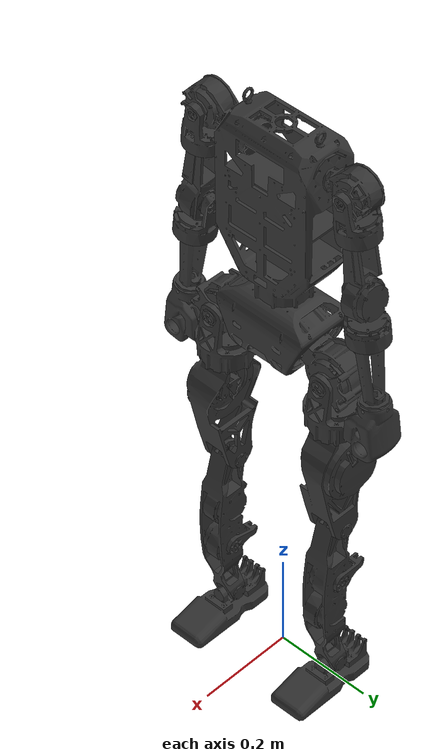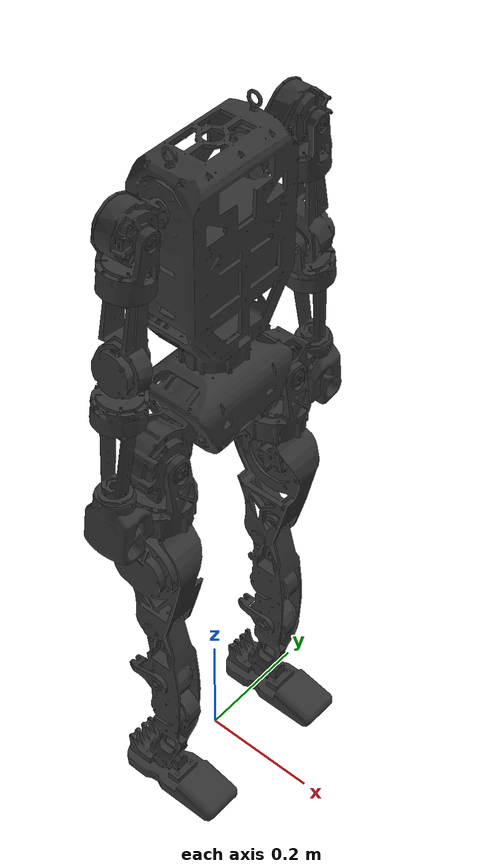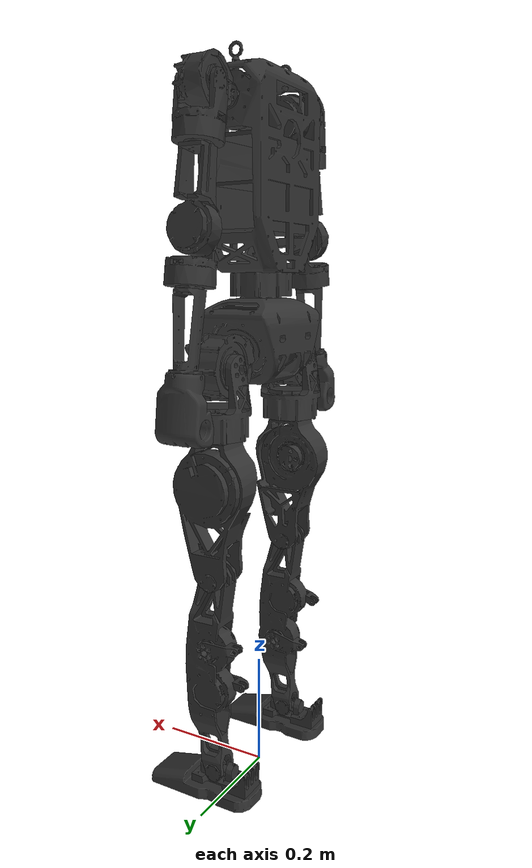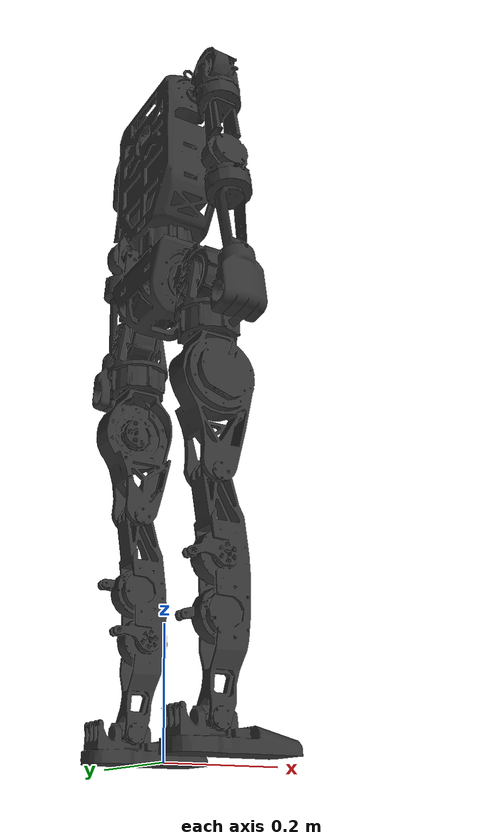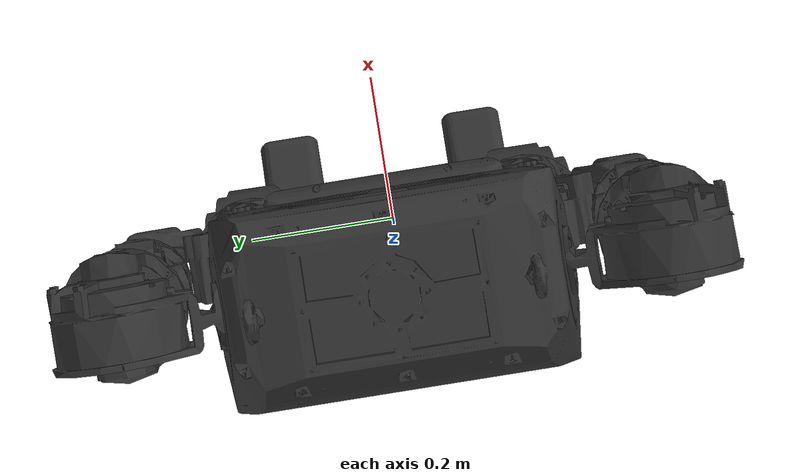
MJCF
<mujoco model="motion1_23dof_rev_1_0">
  <compiler angle="radian" meshdir="assets" autolimits="true"/>

  <option timestep='0.002' iterations="2" ls_iterations="5">
    <flag eulerdamp="disable" />
  </option>

  <default>
    <default class="motion1">
      <default class="visual">
        <geom group="2" type="mesh" density="0" material="silver" contype="0" conaffinity="0"/>
      </default>
      <default class="collision">
        <geom group="3" rgba=".2 .6 .2 .3" type="capsule" contype="1" conaffinity="1"/>
        <default class="foot_sphere">
          <geom type="sphere"/>
        </default>
      </default>
      <site group="5" rgba="1 0 0 1"/>
    </default>
  </default>

  <asset>
    <material name="silver" rgba="0.7 0.7 0.7 1"/>
    <material name="black" rgba="0.2 0.2 0.2 1"/>

    <mesh name="pelvis_link" file="pelvis_link.STL" />

    <mesh name="left_hip_pitch_link" file="left_hip_pitch_link.STL" />
    <mesh name="left_hip_roll_link" file="left_hip_roll_link.STL" />
    <mesh name="left_hip_yaw_link" file="left_hip_yaw_link.STL" />
    <mesh name="left_knee_link" file="left_knee_link.STL" />
    <mesh name="left_ankle_pitch_link" file="left_ankle_pitch_link.STL" />
    <mesh name="left_ankle_roll_link" file="left_ankle_roll_link.STL" />

    <mesh name="right_hip_pitch_link" file="right_hip_pitch_link.STL" />
    <mesh name="right_hip_roll_link" file="right_hip_roll_link.STL" />
    <mesh name="right_hip_yaw_link" file="right_hip_yaw_link.STL" />
    <mesh name="right_knee_link" file="right_knee_link.STL" />
    <mesh name="right_ankle_pitch_link" file="right_ankle_pitch_link.STL" />
    <mesh name="right_ankle_roll_link" file="right_ankle_roll_link.STL" />

    <mesh name="torso_link" file="torso_link.STL" />
    <mesh name="left_shoulder_pitch_link" file="left_shoulder_pitch_link.STL" />
    <mesh name="left_shoulder_roll_link" file="left_shoulder_roll_link.STL" />
    <mesh name="left_shoulder_yaw_link" file="left_shoulder_yaw_link.STL" />
    <mesh name="left_elbow_link" file="left_elbow_link.STL" />
    <mesh name="left_wrist_link" file="left_wrist_link.STL" />
    <mesh name="left_hand_link" file="left_hand_link.STL" />
    <mesh name="left_fist_link" file="left_fist_link.STL" />

    <mesh name="right_shoulder_pitch_link" file="right_shoulder_pitch_link.STL" />
    <mesh name="right_shoulder_roll_link" file="right_shoulder_roll_link.STL" />
    <mesh name="right_shoulder_yaw_link" file="right_shoulder_yaw_link.STL" />
    <mesh name="right_elbow_link" file="right_elbow_link.STL" />
    <mesh name="right_wrist_link" file="right_wrist_link.STL" />
    <mesh name="right_hand_link" file="right_hand_link.STL" />
    <mesh name="right_fist_link" file="right_fist_link.STL" />
  </asset>

  <worldbody>
    <body name="pelvis_link" pos="0 0 0.86">
      <light pos="0 0 2" mode="trackcom"/>
      <camera name="tracking" pos="1.734 -1.135 .35" xyaxes="0.552 0.834 -0.000 -0.170 0.112 0.979" mode="trackcom"/>

      <inertial pos="4.53344e-06 3.06828e-05 -0.0611805" quat="0.498187 0.4977 -0.50201 0.502086" mass="3.08581" diaginertia="0.0131825 0.0125599 0.00780354" />
      <freejoint name="floating_base_joint"/>
      <geom class="visual" material="black" mesh="pelvis_link" />
      <geom name="pelvis_collision" material="silver" class="collision" type="sphere" size="0.07" pos="0 0 -0.08"/>
      <site name="imu_in_pelvis" size="0.01" pos="0.0 0.0 0.0" rgba="0.2 0.2 0.2 1"/>

      <body name="left_hip_pitch_link" pos="0 0.069043 -0.081071" quat="0.976296 -0.216438 0 0">
        <inertial pos="0.00479636 0.0620077 -5.061e-05" quat="0.704343 0.706341 0.0515945 0.0481779" mass="1.12625" diaginertia="0.0016453 0.00138677 0.00117841" />
        <joint name="left_hip_pitch_joint" pos="0 0 0" axis="0 1 0" range="-1.0467 1.0467"/>
        <geom class="visual" material="black" mesh="left_hip_pitch_link" />
        <geom name="left_hip_pitch_collision" material="silver" class="collision" type="sphere" size="0.07" pos="0 0.065 0"/>

        <body name="left_hip_roll_link" pos="0.00775 0.065 0" quat="0.976296 0.21644 0 0">
          <inertial pos="-0.0006976 4.776e-05 -0.0815067" quat="0.710128 0.156242 0.158419 0.667989" mass="1.17184" diaginertia="0.00213295 0.00191099 0.00173009" />
          <joint name="left_hip_roll_joint" pos="0 0 0" axis="1 0 0" range="-0.145 1.0467"/>
          <geom class="visual" material="black" mesh="left_hip_roll_link" />

          <body name="left_hip_yaw_link" pos="0 0 -0.117">
            <inertial pos="0.00201766 0.0171031 -0.0935032" quat="0.699145 0.0459552 -0.0276607 0.712965" mass="2.32881" diaginertia="0.00993015 0.0083453 0.00344585" />
            <joint name="left_hip_yaw_joint" pos="0 0 0" axis="0 0 1" range="-1.0467 1.0467"/>
            <geom class="visual" material="black" mesh="left_hip_yaw_link" />
            <geom name="left_hip_yaw_collision" material="silver" class="collision" type="sphere" size="0.09" pos="0 0 0."/>

            <body name="left_knee_link" pos="0 0 -0.235">
              <inertial pos="0.0111395 -5.099e-05 -0.151304" quat="0.690091 0.0126161 0.0041511 0.723601" mass="1.58249" diaginertia="0.0132017 0.0129301 0.00110673" />
              <joint name="left_knee_joint" pos="0 0 0" axis="0 1 0" range="0.15 1.72"/>
              <geom class="visual" material="black" mesh="left_knee_link" />

              <body name="left_ankle_pitch_link" pos="0 0 -0.35">
                <inertial pos="0 -0.000169027 0" quat="0 0.707107 0 0.707107" mass="0.0771174" diaginertia="1.163e-05 9.26e-06 4.86e-06" />
                <joint name="left_ankle_pitch_joint" pos="0 0 0" axis="0 1 0" range="-0.5 0.5"/>
                <geom class="visual" material="black" mesh="left_ankle_pitch_link" />

                <body name="left_ankle_roll_link">
                  <inertial pos="0.0143376 0 -0.0276824" quat="0 0.685242 0 0.728316" mass="0.716625" diaginertia="0.00247316 0.00229152 0.000402222" />
                  <joint name="left_ankle_roll_joint" pos="0 0 0" axis="1 0 0" range="-0.26 0.26"/>
                  <geom class="visual" material="black" mesh="left_ankle_roll_link" />

                  <site name="left_foot_site" pos="0 0 -0.035" size="0.01" rgba="1 0 0 1" />
                  <geom name="left_foot1_collision" size="0.005" pos="-0.07 0.035 -0.046" rgba="0.2 0.2 0.2 1" class="foot_sphere" />
                  <geom name="left_foot2_collision" size="0.005" pos="-0.07 -0.035 -0.046" rgba="0.2 0.2 0.2 1" class="foot_sphere" />
                  <geom name="left_foot3_collision" size="0.005" pos="0.12 0.035 -0.046" rgba="0.2 0.2 0.2 1" class="foot_sphere" />
                  <geom name="left_foot4_collision" size="0.005" pos="0.12 -0.035 -0.046" rgba="0.2 0.2 0.2 1" class="foot_sphere" />
                </body>
              </body>
            </body>
          </body>
        </body>
      </body>

      <body name="right_hip_pitch_link" pos="0 -0.0689943 -0.0810947" quat="0.976296 0.21644 0 0">
        <inertial pos="0.00479636 -0.0620077 5.061e-05" quat="0.704343 0.706341 -0.0515945 -0.0481779" mass="1.12625" diaginertia="0.0016453 0.00138677 0.00117841" />
        <joint name="right_hip_pitch_joint" pos="0 0 0" axis="0 1 0" range="-1.0467 1.0467"/>
        <geom class="visual" material="black" mesh="right_hip_pitch_link" />
        <geom name="right_hip_pitch_collision" material="silver" class="collision" type="sphere" size="0.07" pos="0 -0.065 0"/>

        <body name="right_hip_roll_link" pos="0.00775 -0.065 0" quat="0.976296 -0.21644 0 0">
          <inertial pos="-0.0006976 4.776e-05 -0.0815067" quat="0.710128 0.156242 0.158419 0.667989" mass="1.17184" diaginertia="0.00213295 0.00191099 0.00173009" />
          <joint name="right_hip_roll_joint" pos="0 0 0" axis="1 0 0" range="-1.0467 0.145"/>
          <geom class="visual" material="black" mesh="right_hip_roll_link" />

          <body name="right_hip_yaw_link" pos="0 0 -0.117">
            <inertial pos="0.00075855 -0.0166956 -0.0927976" quat="0.719892 -0.0233226 0.0506707 0.691841" mass="2.32881" diaginertia="0.00997067 0.00839696 0.00342927" />
            <joint name="right_hip_yaw_joint" pos="0 0 0" axis="0 0 1" range="-1.0467 1.0467"/>
            <geom class="visual" material="black" mesh="right_hip_yaw_link" />
            <geom name="right_hip_yaw_collision" material="silver" class="collision" type="sphere" size="0.09" pos="0 0 0."/>

            <body name="right_knee_link" pos="0 0 -0.235">
              <inertial pos="0.0110855 -7.107e-05 -0.150987" quat="0.734926 0.00480557 0.0153323 0.677957" mass="1.58691" diaginertia="0.0134248 0.0131295 0.00112728" />
              <joint name="right_knee_joint" pos="0 0 0" axis="0 1 0" range="0.15 1.72"/>
              <geom class="visual" material="black" mesh="right_knee_link" />

              <body name="right_ankle_pitch_link" pos="0 0 -0.35">
                <inertial pos="0 0.00016903 -4.57e-05" quat="0 0.707107 0 0.707107" mass="0.077117" diaginertia="1.163e-05 9.26e-06 4.86e-06" />
                <joint name="right_ankle_pitch_joint" pos="0 0 0" axis="0 1 0" range="-0.5 0.5"/>
                <geom class="visual" material="black" mesh="right_ankle_pitch_link" />

                <body name="right_ankle_roll_link">
                  <inertial pos="0.0143379 0 -0.0276825" quat="0 0.685242 0 0.728316" mass="0.716628" diaginertia="0.00247316 0.00229152 0.000402232" />
                  <joint name="right_ankle_roll_joint" pos="0 0 0" axis="1 0 0" range="-0.26 0.26"/>
                  <geom class="visual" material="black" mesh="right_ankle_roll_link" />

                  <site name="right_foot_site" pos="0 0 -0.035" size="0.01" rgba="1 0 0 1" />
                  <geom name="right_foot1_collision" size="0.005" pos="-0.07 0.035 -0.046" rgba="0.2 0.2 0.2 1" class="foot_sphere" />
                  <geom name="right_foot2_collision" size="0.005" pos="-0.07 -0.035 -0.046" rgba="0.2 0.2 0.2 1" class="foot_sphere" />
                  <geom name="right_foot3_collision" size="0.005" pos="0.12 0.035 -0.046" rgba="0.2 0.2 0.2 1" class="foot_sphere" />
                  <geom name="right_foot4_collision" size="0.005" pos="0.12 -0.035 -0.046" rgba="0.2 0.2 0.2 1" class="foot_sphere" />
                </body>
              </body>
            </body>
          </body>
        </body>
      </body>

      <body name="torso_link">
        <inertial pos="0.00590945 -0.000793856 0.203226" quat="0.999972 0.00400751 0.00628655 -0.000219788" mass="8.92389" diaginertia="0.147886 0.131533 0.0433487" />
        <joint name="waist_joint" pos="0 0 0" axis="0 0 1" range="-1.57 1.57"/>
        <geom class="visual" material="black" mesh="torso_link" />
        <site name="imu_in_torso" size="0.01" pos="0.0 0.0 0.0" rgba="0.2 0.2 0.2 1"/>

        <body name="left_shoulder_pitch_link" pos="0 0.103122 0.302183" quat="0.996195 0.0871557 0 0">
          <inertial pos="0.00609218 0.060037 -0.00031418" quat="0.705439 0.707992 0.027144 0.0191561" mass="0.518898" diaginertia="0.000548284 0.00045526 0.000351496" />
          <joint name="left_shoulder_pitch_joint" pos="0 0 0" axis="0 1 0" range="-3.1 3.1"/>
          <geom class="visual" material="black" mesh="left_shoulder_pitch_link" />

          <body name="left_shoulder_roll_link" pos="0 0.062 0" quat="0.996195 -0.0871557 0 0">
            <inertial pos="0.0088239 0.00682039 -0.0581006" quat="0.551464 0.446776 0.50519 0.49098" mass="0.523946" diaginertia="0.000572021 0.000520153 0.000491876" />
            <joint name="left_shoulder_roll_joint" pos="0 0 0" axis="1 0 0" range="-0.175 3"/>
            <geom class="visual" material="black" mesh="left_shoulder_roll_link" />

            <body name="left_shoulder_yaw_link" pos="0.008 0.0109682 -0.0893292" quat="0.998135 0.0610485 0 0">
              <inertial pos="0.00027727 -0.00072403 -0.100022" quat="0.711274 0.00128706 0.00162597 0.702912" mass="0.587778" diaginertia="0.00131276 0.0011883 0.000358856" />
              <joint name="left_shoulder_yaw_joint" pos="0 0 0" axis="0 0 1" range="-3.1 3.1"/>
              <geom class="visual" material="black" mesh="left_shoulder_yaw_link" />

              <body name="left_elbow_link" pos="0 0 -0.12">
                <inertial pos="-0.00033142 -0.00434317 -0.0602152" quat="0.286626 0.649736 -0.645349 0.281449" mass="0.491982" diaginertia="0.000533202 0.000497679 0.000387179" />
                <joint name="left_elbow_joint" pos="0 0 0" axis="0 1 0" range="-1.6 1.6"/>
                <geom class="visual" material="black" mesh="left_elbow_link" />

                <body name="left_wrist_link" pos="0 0 -0.09">
                  <inertial pos="0.00248772 -0.00195905 -0.172027" quat="0.603647 -0.00783246 0.00387491 0.797204" mass="0.710911" diaginertia="0.00408741 0.00374972 0.000528325" />
                  <joint name="left_wrist_joint" pos="0 0 0" axis="0 0 1" range="-3.1 3.1"/>
                  <geom class="visual" material="black" mesh="left_wrist_link" />
                  <geom pos="0 0 -0.1252" quat="1 0 0 0" class="visual" material="black" mesh="left_fist_link" />
                  <geom name="left_wrist_collision" material="silver" class="collision" type="sphere" size="0.05" pos="0 -0.01 -0.2"/>
                </body>
              </body>
            </body>
          </body>
        </body>

        <body name="right_shoulder_pitch_link" pos="0 -0.103122 0.302183" quat="0.996195 -0.0871557 0 0">
          <inertial pos="0.00609218 -0.060037 0.00031418" quat="0.705439 0.707992 -0.027144 -0.0191561" mass="0.518898" diaginertia="0.000548284 0.00045526 0.000351496" />
          <joint name="right_shoulder_pitch_joint" pos="0 0 0" axis="0 1 0" range="-3.1 3.1"/>
          <geom class="visual" material="black" mesh="right_shoulder_pitch_link" />

          <body name="right_shoulder_roll_link" pos="0 -0.062 0" quat="0.999657 0.0261769 0 0">
            <inertial pos="0.0088239 -0.00031113 -0.0584987" quat="0.521586 0.477176 0.475395 0.523689" mass="0.523946" diaginertia="0.000572011 0.000520172 0.000491867" />
            <joint name="right_shoulder_roll_joint" pos="0 0 0" axis="1 0 0" range="-3 0.175"/>
            <geom class="visual" material="black" mesh="right_shoulder_roll_link" />

            <body name="right_shoulder_yaw_link" pos="0.008 0 -0.09">
              <inertial pos="-0.00027727 0.00072403 -0.100022" quat="0.711274 -0.00128706 -0.00162597 0.702912" mass="0.587778" diaginertia="0.00131276 0.0011883 0.000358856" />
              <joint name="right_shoulder_yaw_joint" pos="0 0 0" axis="0 0 1" range="-3.1 3.1"/>
              <geom class="visual" material="black" mesh="right_shoulder_yaw_link" />

              <body name="right_elbow_link" pos="0 0 -0.12">
                <inertial pos="0.00033142 0.00434317 -0.0602152" quat="0.645349 0.281449 -0.286626 0.649736" mass="0.491982" diaginertia="0.000533202 0.000497679 0.000387179" />
                <joint name="right_elbow_joint" pos="0 0 0" axis="0 1 0" range="-1.6 1.6"/>
                <geom class="visual" material="black" mesh="right_elbow_link" />

                <body name="right_wrist_link" pos="0 0 -0.09">
                  <inertial pos="0.00167453 0.00177851 -0.177258" quat="0.820148 0.00456919 -0.00892685 0.572064" mass="0.710911" diaginertia="0.00441165 0.00411905 0.000511156" />
                  <joint name="right_wrist_joint" pos="0 0 0" axis="0 0 1" range="-3.1 3.1"/>
                  <geom class="visual" material="black" mesh="right_wrist_link" />
                  <geom pos="0 0 -0.1252" quat="1 0 0 0" class="visual" material="black" mesh="right_fist_link" />
                  <geom name="right_wrist_collision" material="silver" class="collision" type="sphere" size="0.05" pos="0 0.01 -0.2"/>
                </body>
              </body>
            </body>
          </body>
        </body>
      </body>
    </body>
  </worldbody>

  <contact>
    <exclude body1="left_hip_pitch_link" body2="left_hip_yaw_link"/>
    <exclude body1="right_hip_pitch_link" body2="right_hip_yaw_link"/>
  </contact>
</mujoco>
